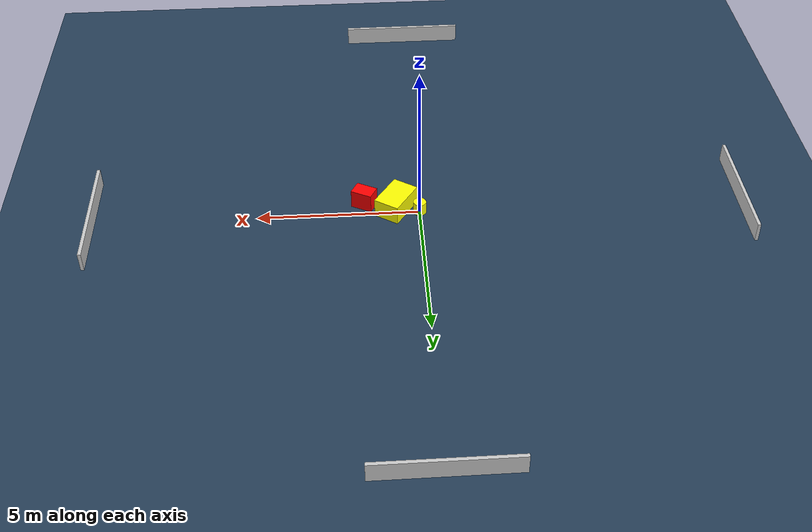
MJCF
<?xml version="1.0" ?>
<mujoco model="generated_environment">
  <option timestep="0.01" integrator="RK4" cone="elliptic"/>
  <default>
    <geom density="1"/>
  </default>
  <asset>
    <texture builtin="gradient" height="3072" name="skybox" rgb1="0.3 0.5 0.7" rgb2="0 0 0" type="skybox" width="512"/>
    <texture builtin="checker" height="300" name="groundplane" rgb1="0.2 0.3 0.4" rgb2="0.1 0.2 0.3" type="2d" width="300"/>
    <material name="groundplane" reflectance="0.2" texrepeat="5 5" texture="groundplane"/>
  </asset>
  <worldbody>
    <light dir="0 0 -1" directional="true" pos="0 0 1.5"/>
    <geom condim="3" friction="0.5 0.005 0.001" material="groundplane" name="floor" pos="0 0 0" size="0 0 0.05" type="plane"/>
    <body name="walls">
      <geom name="wall_1" condim="4" pos="-10.0 0.0 0.3" rgba="0.800000011920929 0.800000011920929 0.800000011920929 1.0" size="0.05 2.0 0.3" type="box"/>
      <geom name="wall_2" condim="4" pos="10.0 0.0 0.3" rgba="0.800000011920929 0.800000011920929 0.800000011920929 1.0" size="0.05 2.0 0.3" type="box"/>
      <geom name="wall_3" condim="4" pos="0.0 -10.0 0.3" rgba="0.800000011920929 0.800000011920929 0.800000011920929 1.0" size="2.0 0.05 0.3" type="box"/>
      <geom name="wall_4" condim="4" pos="0.0 10.0 0.3" rgba="0.800000011920929 0.800000011920929 0.800000011920929 1.0" size="2.0 0.05 0.3" type="box"/>
    </body>
    <body name="robot">
      <joint name="joint_x" type="slide" pos="0 0 0" axis="1 0 0"/>
      <joint name="joint_y" type="slide" pos="0 0 0" axis="0 1 0"/>
      <geom name="robot" type="cylinder" pos="0.0 0.0 0.2" size="0.2 0.2 0.0" mass="5.0" friction="1.0 0.005 0.0001" condim="4" rgba="1.0 1.0 0.0 1.0"/>
    </body>
    <body name="obstacle_1_movable">
      <geom name="obstacle_1_movable" condim="4" pos="0.7225161500843317 -0.19573770726504433 0.3" euler="0 0 146.55278978454243" friction="0.0 0.005 0.001" rgba="1.0 1.0 0.0 1.0" size="0.4070471211638486 0.6019844290231096 0.3" type="box" mass="0.1"/>
      <joint type="free"/>
    </body>
    <body name="obstacle_2_static">
      <geom name="obstacle_2_static" condim="4" pos="1.6951307749621556 -0.44512376167206286 0.3" euler="0 0 62.323768872400045" friction="0.0 0.005 0.001" rgba="1.0 0.0 0.0 1.0" size="0.23100354971724427 0.33524994402853825 0.3" type="box"/>
    </body>
  </worldbody>
  <actuator>
    <motor name="actuator_x" joint="joint_x" gear="1" ctrlrange="-1 1"/>
    <motor name="actuator_y" joint="joint_y" gear="1" ctrlrange="-1 1"/>
  </actuator>
</mujoco>
